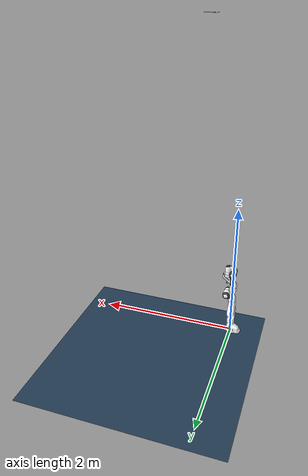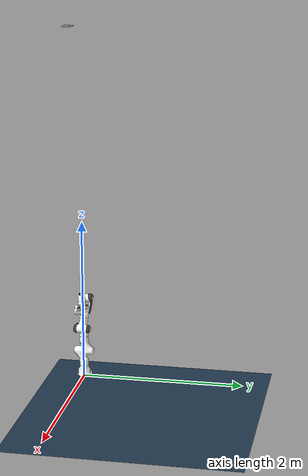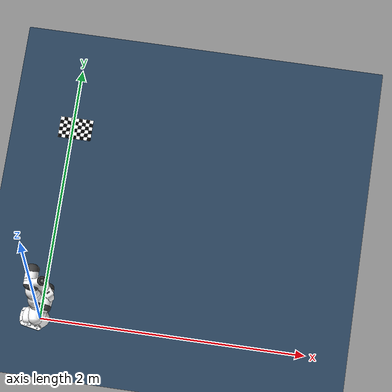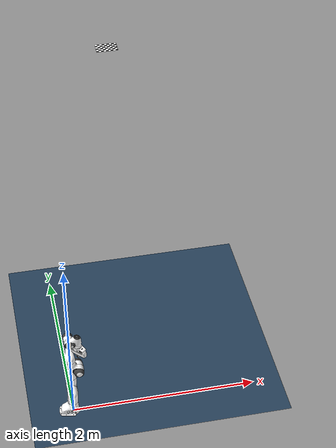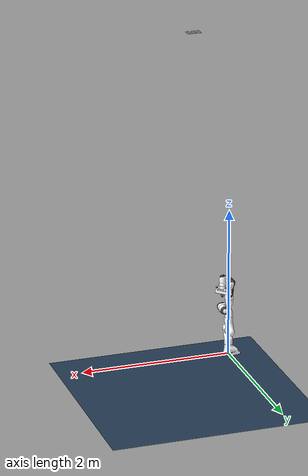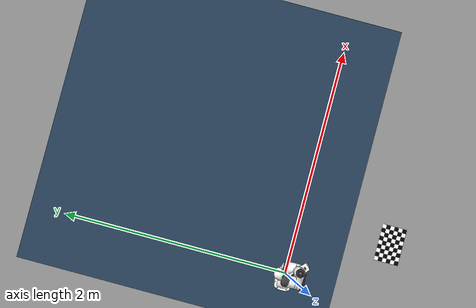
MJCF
<mujoco model="panda scene">
  <include file="panda.xml"/>

  <statistic center="0.3 0 0.4" extent="1"/>

  <visual>
    <headlight diffuse="0.6 0.6 0.6" ambient="0.3 0.3 0.3" specular="0 0 0"/>
    <rgba haze="0.15 0.25 0.35 1"/>
    <global azimuth="120" elevation="-20"/>
  </visual>

  <asset>
    <texture type="skybox" builtin="gradient" rgb1="0.3 0.5 0.7" rgb2="0 0 0" width="512" height="3072"/>
    <texture type="2d" name="groundplane" builtin="checker" mark="edge" rgb1="0.2 0.3 0.4" rgb2="0.1 0.2 0.3"
      markrgb="0.8 0.8 0.8" width="300" height="300"/>
    <!-- 导入AprilTag纹理 -->
    <texture name="tag_0" type="2d" file="../misc/textures/tag36h11_11.png" width="100" height="100">

    </texture>
    <!-- 创建AprilTag材质 -->
    <material name="mat_tag_0" texture="tag_0" rgba="1 1 1 1"/>  <!-- rgba=白不透明 -->
    <material name="groundplane" texture="groundplane" texuniform="true" texrepeat="5 5" reflectance="0.2"/>
  </asset>

  <worldbody>
    <light pos="0 0 1.5" dir="0 0 -1" directional="true"/>
    <geom name="floor" size="0 0 0.05" type="plane" material="groundplane"/>
    <camera name="rgb_camera" pos="0.5 0 0.6" euler="0 0 0" fovy="60"/>

    <!-- 相机标定用棋盘格（8x5内角点，0.02m方格） -->
    <body name="calib_checkerboard" pos="0.5 0 4.45" mocap="true">
      <!-- 白色底板 -->
      <geom name="checker_base"
            type="box"
            size="0.09 0.06 0.0001"
            rgba="1 1 1 1"
            conaffinity="0"
            contype="0"/>

      <!-- 黑色方格 -->
      <!-- 行0（最下方）：列0、2、4、6、8 -->
      <geom name="c0_0" type="box" size="0.01 0.01 0.0002" pos="-0.08 -0.05 0.0001" rgba="0 0 0 1" conaffinity="0" contype="0"/>
      <geom name="c2_0" type="box" size="0.01 0.01 0.0002" pos="-0.04 -0.05 0.0001" rgba="0 0 0 1" conaffinity="0" contype="0"/>
      <geom name="c4_0" type="box" size="0.01 0.01 0.0002" pos="0.00 -0.05 0.0001" rgba="0 0 0 1" conaffinity="0" contype="0"/>
      <geom name="c6_0" type="box" size="0.01 0.01 0.0002" pos="0.04 -0.05 0.0001" rgba="0 0 0 1" conaffinity="0" contype="0"/>
      <geom name="c8_0" type="box" size="0.01 0.01 0.0002" pos="0.08 -0.05 0.0001" rgba="0 0 0 1" conaffinity="0" contype="0"/>

      <geom name="c1_1" type="box" size="0.01 0.01 0.0002" pos="-0.06 -0.03 0.0001" rgba="0 0 0 1" conaffinity="0" contype="0"/>
      <geom name="c3_1" type="box" size="0.01 0.01 0.0002" pos="-0.02 -0.03 0.0001" rgba="0 0 0 1" conaffinity="0" contype="0"/>
      <geom name="c5_1" type="box" size="0.01 0.01 0.0002" pos="0.02 -0.03 0.0001" rgba="0 0 0 1" conaffinity="0" contype="0"/>
      <geom name="c7_1" type="box" size="0.01 0.01 0.0002" pos="0.06 -0.03 0.0001" rgba="0 0 0 1" conaffinity="0" contype="0"/>

      <geom name="c0_2" type="box" size="0.01 0.01 0.0002" pos="-0.08 -0.01 0.0001" rgba="0 0 0 1" conaffinity="0" contype="0"/>
      <geom name="c2_2" type="box" size="0.01 0.01 0.0002" pos="-0.04 -0.01 0.0001" rgba="0 0 0 1" conaffinity="0" contype="0"/>
      <geom name="c4_2" type="box" size="0.01 0.01 0.0002" pos="0.00 -0.01 0.0001" rgba="0 0 0 1" conaffinity="0" contype="0"/>
      <geom name="c6_2" type="box" size="0.01 0.01 0.0002" pos="0.04 -0.01 0.0001" rgba="0 0 0 1" conaffinity="0" contype="0"/>
      <geom name="c8_2" type="box" size="0.01 0.01 0.0002" pos="0.08 -0.01 0.0001" rgba="0 0 0 1" conaffinity="0" contype="0"/>

      <geom name="c1_3" type="box" size="0.01 0.01 0.0002" pos="-0.06 0.01 0.0001" rgba="0 0 0 1" conaffinity="0" contype="0"/>
      <geom name="c3_3" type="box" size="0.01 0.01 0.0002" pos="-0.02 0.01 0.0001" rgba="0 0 0 1" conaffinity="0" contype="0"/>
      <geom name="c5_3" type="box" size="0.01 0.01 0.0002" pos="0.02 0.01 0.0001" rgba="0 0 0 1" conaffinity="0" contype="0"/>
      <geom name="c7_3" type="box" size="0.01 0.01 0.0002" pos="0.06 0.01 0.0001" rgba="0 0 0 1" conaffinity="0" contype="0"/>

      <geom name="c0_4" type="box" size="0.01 0.01 0.0002" pos="-0.08 0.03 0.0001" rgba="0 0 0 1" conaffinity="0" contype="0"/>
      <geom name="c2_4" type="box" size="0.01 0.01 0.0002" pos="-0.04 0.03 0.0001" rgba="0 0 0 1" conaffinity="0" contype="0"/>
      <geom name="c4_4" type="box" size="0.01 0.01 0.0002" pos="0.00 0.03 0.0001" rgba="0 0 0 1" conaffinity="0" contype="0"/>
      <geom name="c6_4" type="box" size="0.01 0.01 0.0002" pos="0.04 0.03 0.0001" rgba="0 0 0 1" conaffinity="0" contype="0"/>
      <geom name="c8_4" type="box" size="0.01 0.01 0.0002" pos="0.08 0.03 0.0001" rgba="0 0 0 1" conaffinity="0" contype="0"/>

      <!-- 行5（最上方）：列1、3、5、7 -->
      <geom name="c1_5" type="box" size="0.01 0.01 0.0002" pos="-0.06 0.05 0.0001" rgba="0 0 0 1" conaffinity="0" contype="0"/>
      <geom name="c3_5" type="box" size="0.01 0.01 0.0002" pos="-0.02 0.05 0.0001" rgba="0 0 0 1" conaffinity="0" contype="0"/>
      <geom name="c5_5" type="box" size="0.01 0.01 0.0002" pos="0.02 0.05 0.0001" rgba="0 0 0 1" conaffinity="0" contype="0"/>
      <geom name="c7_5" type="box" size="0.01 0.01 0.0002" pos="0.06 0.05 0.0001" rgba="0 0 0 1" conaffinity="0" contype="0"/>
    </body>

  </worldbody>
</mujoco>

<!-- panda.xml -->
<mujoco model="panda">
  <compiler angle="radian" meshdir="assets" autolimits="true"/>

  <option integrator="implicitfast"/>

  <default>
    <default class="panda">
      <material specular="0.5" shininess="0.25"/>
      <joint armature="0.1" damping="1" axis="0 0 1" range="-2.8973 2.8973"/>
      <general dyntype="none" biastype="affine" ctrlrange="-2.8973 2.8973" forcerange="-87 87"/>
      <default class="finger">
        <joint axis="0 1 0" type="slide" range="0 0.04"/>
      </default>

      <default class="visual">
        <geom type="mesh" contype="0" conaffinity="0" group="2"/>
      </default>
      <default class="collision">
        <geom type="mesh" group="3"/>
        <default class="fingertip_pad_collision_1">
          <geom type="box" size="0.0085 0.004 0.0085" pos="0 0.0055 0.0445"/>
        </default>
        <default class="fingertip_pad_collision_2">
          <geom type="box" size="0.003 0.002 0.003" pos="0.0055 0.002 0.05"/>
        </default>
        <default class="fingertip_pad_collision_3">
          <geom type="box" size="0.003 0.002 0.003" pos="-0.0055 0.002 0.05"/>
        </default>
        <default class="fingertip_pad_collision_4">
          <geom type="box" size="0.003 0.002 0.0035" pos="0.0055 0.002 0.0395"/>
        </default>
        <default class="fingertip_pad_collision_5">
          <geom type="box" size="0.003 0.002 0.0035" pos="-0.0055 0.002 0.0395"/>
        </default>
      </default>
    </default>
  </default>

  <asset>
    <material class="panda" name="white" rgba="1 1 1 1"/>
    <material class="panda" name="off_white" rgba="0.901961 0.921569 0.929412 1"/>
    <material class="panda" name="black" rgba="0.25 0.25 0.25 1"/>
    <material class="panda" name="green" rgba="0 1 0 1"/>
    <material class="panda" name="light_blue" rgba="0.039216 0.541176 0.780392 1"/>

    <!-- Collision meshes -->
    <mesh name="link0_c" file="link0.stl"/>
    <mesh name="link1_c" file="link1.stl"/>
    <mesh name="link2_c" file="link2.stl"/>
    <mesh name="link3_c" file="link3.stl"/>
    <mesh name="link4_c" file="link4.stl"/>
    <mesh name="link5_c0" file="link5_collision_0.obj"/>
    <mesh name="link5_c1" file="link5_collision_1.obj"/>
    <mesh name="link5_c2" file="link5_collision_2.obj"/>
    <mesh name="link6_c" file="link6.stl"/>
    <mesh name="link7_c" file="link7.stl"/>
    <mesh name="hand_c" file="hand.stl"/>

    <!-- Visual meshes -->
    <mesh file="link0_0.obj"/>
    <mesh file="link0_1.obj"/>
    <mesh file="link0_2.obj"/>
    <mesh file="link0_3.obj"/>
    <mesh file="link0_4.obj"/>
    <mesh file="link0_5.obj"/>
    <mesh file="link0_7.obj"/>
    <mesh file="link0_8.obj"/>
    <mesh file="link0_9.obj"/>
    <mesh file="link0_10.obj"/>
    <mesh file="link0_11.obj"/>
    <mesh file="link1.obj"/>
    <mesh file="link2.obj"/>
    <mesh file="link3_0.obj"/>
    <mesh file="link3_1.obj"/>
    <mesh file="link3_2.obj"/>
    <mesh file="link3_3.obj"/>
    <mesh file="link4_0.obj"/>
    <mesh file="link4_1.obj"/>
    <mesh file="link4_2.obj"/>
    <mesh file="link4_3.obj"/>
    <mesh file="link5_0.obj"/>
    <mesh file="link5_1.obj"/>
    <mesh file="link5_2.obj"/>
    <mesh file="link6_0.obj"/>
    <mesh file="link6_1.obj"/>
    <mesh file="link6_2.obj"/>
    <mesh file="link6_3.obj"/>
    <mesh file="link6_4.obj"/>
    <mesh file="link6_5.obj"/>
    <mesh file="link6_6.obj"/>
    <mesh file="link6_7.obj"/>
    <mesh file="link6_8.obj"/>
    <mesh file="link6_9.obj"/>
    <mesh file="link6_10.obj"/>
    <mesh file="link6_11.obj"/>
    <mesh file="link6_12.obj"/>
    <mesh file="link6_13.obj"/>
    <mesh file="link6_14.obj"/>
    <mesh file="link6_15.obj"/>
    <mesh file="link6_16.obj"/>
    <mesh file="link7_0.obj"/>
    <mesh file="link7_1.obj"/>
    <mesh file="link7_2.obj"/>
    <mesh file="link7_3.obj"/>
    <mesh file="link7_4.obj"/>
    <mesh file="link7_5.obj"/>
    <mesh file="link7_6.obj"/>
    <mesh file="link7_7.obj"/>
    <mesh file="hand_0.obj"/>
    <mesh file="hand_1.obj"/>
    <mesh file="hand_2.obj"/>
    <mesh file="hand_3.obj"/>
    <mesh file="hand_4.obj"/>
    <mesh file="finger_0.obj"/>
    <mesh file="finger_1.obj"/>
  </asset>

  <worldbody>
    <light name="top" pos="0 0 2" mode="trackcom"/>
    <body name="link0" childclass="panda">
      <inertial mass="0.629769" pos="-0.041018 -0.00014 0.049974"
        fullinertia="0.00315 0.00388 0.004285 8.2904e-7 0.00015 8.2299e-6"/>
      <geom mesh="link0_0" material="off_white" class="visual"/>
      <geom mesh="link0_1" material="black" class="visual"/>
      <geom mesh="link0_2" material="off_white" class="visual"/>
      <geom mesh="link0_3" material="black" class="visual"/>
      <geom mesh="link0_4" material="off_white" class="visual"/>
      <geom mesh="link0_5" material="black" class="visual"/>
      <geom mesh="link0_7" material="white" class="visual"/>
      <geom mesh="link0_8" material="white" class="visual"/>
      <geom mesh="link0_9" material="black" class="visual"/>
      <geom mesh="link0_10" material="off_white" class="visual"/>
      <geom mesh="link0_11" material="white" class="visual"/>
      <geom mesh="link0_c" class="collision"/>
      <body name="link1" pos="0 0 0.333">
        <inertial mass="4.970684" pos="0.003875 0.002081 -0.04762"
          fullinertia="0.70337 0.70661 0.0091170 -0.00013900 0.0067720 0.019169"/>
        <joint name="joint1"/>
        <geom material="white" mesh="link1" class="visual"/>
        <geom mesh="link1_c" class="collision"/>
        <body name="link2" quat="1 -1 0 0">
          <inertial mass="0.646926" pos="-0.003141 -0.02872 0.003495"
            fullinertia="0.0079620 2.8110e-2 2.5995e-2 -3.925e-3 1.0254e-2 7.04e-4"/>
          <joint name="joint2" range="-1.7628 1.7628"/>
          <geom material="white" mesh="link2" class="visual"/>
          <geom mesh="link2_c" class="collision"/>
          <body name="link3" pos="0 -0.316 0" quat="1 1 0 0">
            <joint name="joint3"/>
            <inertial mass="3.228604" pos="2.7518e-2 3.9252e-2 -6.6502e-2"
              fullinertia="3.7242e-2 3.6155e-2 1.083e-2 -4.761e-3 -1.1396e-2 -1.2805e-2"/>
            <geom mesh="link3_0" material="white" class="visual"/>
            <geom mesh="link3_1" material="white" class="visual"/>
            <geom mesh="link3_2" material="white" class="visual"/>
            <geom mesh="link3_3" material="black" class="visual"/>
            <geom mesh="link3_c" class="collision"/>
            <body name="link4" pos="0.0825 0 0" quat="1 1 0 0">
              <inertial mass="3.587895" pos="-5.317e-2 1.04419e-1 2.7454e-2"
                fullinertia="2.5853e-2 1.9552e-2 2.8323e-2 7.796e-3 -1.332e-3 8.641e-3"/>
              <joint name="joint4" range="-3.0718 -0.0698"/>
              <geom mesh="link4_0" material="white" class="visual"/>
              <geom mesh="link4_1" material="white" class="visual"/>
              <geom mesh="link4_2" material="black" class="visual"/>
              <geom mesh="link4_3" material="white" class="visual"/>
              <geom mesh="link4_c" class="collision"/>
              <body name="link5" pos="-0.0825 0.384 0" quat="1 -1 0 0">
                <inertial mass="1.225946" pos="-1.1953e-2 4.1065e-2 -3.8437e-2"
                  fullinertia="3.5549e-2 2.9474e-2 8.627e-3 -2.117e-3 -4.037e-3 2.29e-4"/>
                <joint name="joint5"/>
                <geom mesh="link5_0" material="black" class="visual"/>
                <geom mesh="link5_1" material="white" class="visual"/>
                <geom mesh="link5_2" material="white" class="visual"/>
                <geom mesh="link5_c0" class="collision"/>
                <geom mesh="link5_c1" class="collision"/>
                <geom mesh="link5_c2" class="collision"/>
                <body name="link6" quat="1 1 0 0">
                  <inertial mass="1.666555" pos="6.0149e-2 -1.4117e-2 -1.0517e-2"
                    fullinertia="1.964e-3 4.354e-3 5.433e-3 1.09e-4 -1.158e-3 3.41e-4"/>
                  <joint name="joint6" range="-0.0175 3.7525"/>
                  <geom mesh="link6_0" material="off_white" class="visual"/>
                  <geom mesh="link6_1" material="white" class="visual"/>
                  <geom mesh="link6_2" material="black" class="visual"/>
                  <geom mesh="link6_3" material="white" class="visual"/>
                  <geom mesh="link6_4" material="white" class="visual"/>
                  <geom mesh="link6_5" material="white" class="visual"/>
                  <geom mesh="link6_6" material="white" class="visual"/>
                  <geom mesh="link6_7" material="light_blue" class="visual"/>
                  <geom mesh="link6_8" material="light_blue" class="visual"/>
                  <geom mesh="link6_9" material="black" class="visual"/>
                  <geom mesh="link6_10" material="black" class="visual"/>
                  <geom mesh="link6_11" material="white" class="visual"/>
                  <geom mesh="link6_12" material="green" class="visual"/>
                  <geom mesh="link6_13" material="white" class="visual"/>
                  <geom mesh="link6_14" material="black" class="visual"/>
                  <geom mesh="link6_15" material="black" class="visual"/>
                  <geom mesh="link6_16" material="white" class="visual"/>
                  <geom mesh="link6_c" class="collision"/>
                  <body name="link7" pos="0.088 0 0" quat="1 1 0 0">
                    <inertial mass="7.35522e-01" pos="1.0517e-2 -4.252e-3 6.1597e-2"
                      fullinertia="1.2516e-2 1.0027e-2 4.815e-3 -4.28e-4 -1.196e-3 -7.41e-4"/>
                    <joint name="joint7"/>
                    <geom mesh="link7_0" material="white" class="visual"/>
                    <geom mesh="link7_1" material="black" class="visual"/>
                    <geom mesh="link7_2" material="black" class="visual"/>
                    <geom mesh="link7_3" material="black" class="visual"/>
                    <geom mesh="link7_4" material="black" class="visual"/>
                    <geom mesh="link7_5" material="black" class="visual"/>
                    <geom mesh="link7_6" material="black" class="visual"/>
                    <geom mesh="link7_7" material="white" class="visual"/>
                    <geom mesh="link7_c" class="collision"/>
                    <body name="hand" pos="0 0 0.107" quat="0.9238795 0 0 -0.3826834">
                      <inertial mass="0.73" pos="-0.01 0 0.03" diaginertia="0.001 0.0025 0.0017"/>
                      <geom mesh="hand_0" material="off_white" class="visual"/>
                      <geom mesh="hand_1" material="black" class="visual"/>
                      <geom mesh="hand_2" material="black" class="visual"/>
                      <geom mesh="hand_3" material="white" class="visual"/>
                      <geom mesh="hand_4" material="off_white" class="visual"/>
                      <geom mesh="hand_c" class="collision"/>

                      <!-- refer to the panda_grasptarget in panda.urdf in panda_gym -->
                        <body name="ee_center_body" pos="0 0 0.105">
                            <site name='ee_center_site' size="0.01" group="3"/>
                        </body>

                      <body name="left_finger" pos="0 0 0.0584">
                        <inertial mass="0.015" pos="0 0 0" diaginertia="2.375e-6 2.375e-6 7.5e-7"/>
                        <joint name="finger_joint1" class="finger"/>
                        <geom mesh="finger_0" material="off_white" class="visual"/>
                        <geom mesh="finger_1" material="black" class="visual"/>
                        <geom mesh="finger_0" class="collision"/>
                        <geom class="fingertip_pad_collision_1"/>
                        <geom class="fingertip_pad_collision_2"/>
                        <geom class="fingertip_pad_collision_3"/>
                        <geom class="fingertip_pad_collision_4"/>
                        <geom class="fingertip_pad_collision_5"/>
                      </body>
                      <body name="right_finger" pos="0 0 0.0584" quat="0 0 0 1">
                        <inertial mass="0.015" pos="0 0 0" diaginertia="2.375e-6 2.375e-6 7.5e-7"/>
                        <joint name="finger_joint2" class="finger"/>
                        <geom mesh="finger_0" material="off_white" class="visual"/>
                        <geom mesh="finger_1" material="black" class="visual"/>
                        <geom mesh="finger_0" class="collision"/>
                        <geom class="fingertip_pad_collision_1"/>
                        <geom class="fingertip_pad_collision_2"/>
                        <geom class="fingertip_pad_collision_3"/>
                        <geom class="fingertip_pad_collision_4"/>
                        <geom class="fingertip_pad_collision_5"/>
                      </body>
                    </body>
                  </body>
                </body>
              </body>
            </body>
          </body>
        </body>
      </body>
    </body>
  </worldbody>

  <tendon>
    <fixed name="split">
      <joint joint="finger_joint1" coef="0.5"/>
      <joint joint="finger_joint2" coef="0.5"/>
    </fixed>
  </tendon>

  <equality>
    <joint joint1="finger_joint1" joint2="finger_joint2" solimp="0.95 0.99 0.001" solref="0.005 1"/>
  </equality>

  <actuator>
    <general class="panda" name="actuator1" joint="joint1" gainprm="4500" biasprm="0 -4500 -450"/>
    <general class="panda" name="actuator2" joint="joint2" gainprm="4500" biasprm="0 -4500 -450"
      ctrlrange="-1.7628 1.7628"/>
    <general class="panda" name="actuator3" joint="joint3" gainprm="3500" biasprm="0 -3500 -350"/>
    <general class="panda" name="actuator4" joint="joint4" gainprm="3500" biasprm="0 -3500 -350"
      ctrlrange="-3.0718 -0.0698"/>
    <general class="panda" name="actuator5" joint="joint5" gainprm="2000" biasprm="0 -2000 -200" forcerange="-12 12"/>
    <general class="panda" name="actuator6" joint="joint6" gainprm="2000" biasprm="0 -2000 -200" forcerange="-12 12"
      ctrlrange="-0.0175 3.7525"/>
    <general class="panda" name="actuator7" joint="joint7" gainprm="2000" biasprm="0 -2000 -200" forcerange="-12 12"/>
    <!-- Remap original ctrlrange (0, 0.04) to (0, 255): 0.04 * 100 / 255 = 0.01568627451 -->
    <general class="panda" name="actuator8" tendon="split" forcerange="-100 100" ctrlrange="0 255"
      gainprm="0.01568627451 0 0" biasprm="0 -100 -10"/>
  </actuator>

  <contact>
    <exclude body1="link0" body2="link1"/>
  </contact>
</mujoco>
